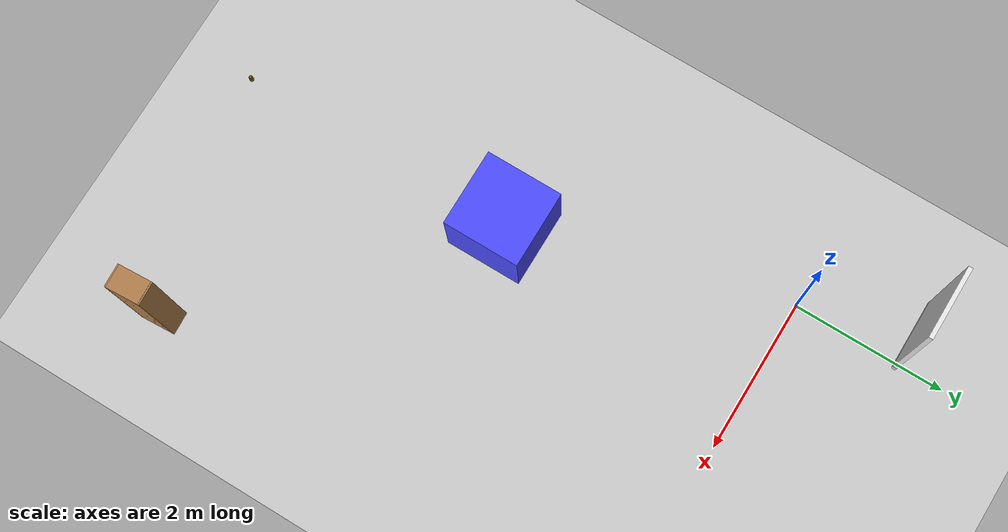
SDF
<sdf version="1.6">
 <world name="default">
  <model name="ground_plane">
   <static>1</static>
   <link name="link">
    <collision name="collision">
     <geometry><plane><normal>0 0 1</normal><size>100 100</size></plane></geometry>
     <surface><friction><ode><mu>100</mu><mu2>50</mu2></ode></friction></surface>
    </collision>
    <visual name="visual">
     <cast_shadows>0</cast_shadows>
     <geometry><plane><normal>0 0 1</normal><size>100 100</size></plane></geometry>
     <material>
      <script><uri>file://media/materials/scripts/gazebo.material</uri><name>Gazebo/Grey</name></script>
     </material>
    </visual>
   </link>
  </model>
  <model name="static_box_3">
   <link name="link">
    <inertial>
     <mass>100</mass>
     <inertia>
      <ixx>0.166667</ixx>
      <ixy>0</ixy>
      <ixz>0</ixz>
      <iyy>0.166667</iyy>
      <iyz>0</iyz>
      <izz>0.166667</izz>
     </inertia>
    </inertial>
    <visual name="visual">
     <geometry><box><size>1 1 1</size></box></geometry>
     <material>
      <script><name>Gazebo/Grey</name><uri>file://media/materials/scripts/gazebo.material</uri></script>
      <ambient>0.3 0.3 1 1</ambient>
      <diffuse>0.7 0.7 0.7 1</diffuse>
      <specular>0.01 0.01 0.01 1</specular>
      <emissive>0 0 0 1</emissive>
      <shader type="vertex"><normal_map>__default__</normal_map></shader>
     </material>
    </visual>
    <collision name="collision">
     <geometry><box><size>1 1 1</size></box></geometry>
     <surface>
      <friction>
       <ode><mu>1</mu><mu2>1</mu2><fdir1>0 0 0</fdir1><slip1>0</slip1><slip2>0</slip2></ode>
       <torsional>
        <coefficient>1</coefficient>
        <patch_radius>0</patch_radius>
        <surface_radius>0</surface_radius>
        <use_patch_radius>1</use_patch_radius>
        <ode><slip>0</slip></ode>
       </torsional>
      </friction>
      <bounce><restitution_coefficient>0</restitution_coefficient><threshold>1e+06</threshold></bounce>
      <contact>
       <collide_without_contact>0</collide_without_contact>
       <collide_without_contact_bitmask>1</collide_without_contact_bitmask>
       <collide_bitmask>1</collide_bitmask>
       <ode>
        <soft_cfm>0</soft_cfm>
        <soft_erp>0.2</soft_erp>
        <kp>1e+13</kp>
        <kd>1</kd>
        <max_vel>0.01</max_vel>
        <min_depth>0</min_depth>
       </ode>
       <bullet>
        <split_impulse>1</split_impulse>
        <split_impulse_penetration_threshold>-0.01</split_impulse_penetration_threshold>
        <soft_cfm>0</soft_cfm>
        <soft_erp>0.2</soft_erp>
        <kp>1e+13</kp>
        <kd>1</kd>
       </bullet>
      </contact>
     </surface>
    </collision>
   </link>
   <static>0</static>
   <pose>1.00498 -3.51701 0.499998 1e-06 -1.4e-05 0.0012</pose>
  </model>
  <model name="full_wall_55_920_2090_0">
   <link name="link">
    <inertial>
     <mass>50</mass>
     <inertia><ixx>1</ixx><ixy>0</ixy><ixz>0</ixz><iyy>1</iyy><iyz>0</iyz><izz>1</izz></inertia>
    </inertial>
    <visual name="bottom_frame">
     <pose>0 0 0.05 0 -0 0</pose>
     <geometry><box><size>0.055 0.92 0.1</size></box></geometry>
     <material>
      <script><uri>model://base_materials/color/scripts</uri><name>hsr_color/white</name></script>
     </material>
    </visual>
    <collision name="collision_bottom_frame">
     <pose>0 0 0.05 0 -0 0</pose>
     <geometry><box><size>0.055 0.92 0.1</size></box></geometry>
    </collision>
    <visual name="wall">
     <pose>0 0 1.095 0 -0 0</pose>
     <geometry><box><size>0.055 0.92 1.99</size></box></geometry>
     <material>
      <script>
       <uri>model://base_materials/wall/scripts</uri>
       <uri>model://base_materials/wall/textures</uri>
       <name>wall/white_noise</name>
      </script>
     </material>
    </visual>
    <collision name="collision_wall">
     <pose>0 0 1.095 0 -0 0</pose>
     <geometry><box><size>0.055 0.92 1.99</size></box></geometry>
    </collision>
    <velocity_decay><linear>0</linear><angular>0</angular></velocity_decay>
   </link>
   <static>1</static>
   <pose>-0.391738 1.37269 0 0 -0 1.5726</pose>
  </model>
  <model name="bottle">
   <link name="link">
    <inertial>
     <mass>0.05</mass>
     <inertia><ixx>0.00058</ixx><ixy>0</ixy><ixz>0</ixz><iyy>0.00058</iyy><iyz>0</iyz><izz>0.00016</izz></inertia>
    </inertial>
    <visual name="top">
     <pose>0 0 0.0555 0 -0 0</pose>
     <geometry><cylinder><radius>0.019</radius><length>0.016</length></cylinder></geometry>
     <material>
      <ambient>1 0.647 0 1</ambient>
      <diffuse>0.5 0.3235 0 1</diffuse>
      <specular>0.1 0.1 0.1 1</specular>
      <emissive>0 0 0 0</emissive>
     </material>
    </visual>
    <collision name="collision_top">
     <pose>0 0 0.0555 0 -0 0</pose>
     <geometry><cylinder><radius>0.019</radius><length>0.016</length></cylinder></geometry>
     <surface>
      <bounce><restitution_coefficient>0.2</restitution_coefficient><threshold>0</threshold></bounce>
      <contact><ode><kp>10000</kp><max_vel>10</max_vel></ode></contact>
     </surface>
    </collision>
    <visual name="bottom">
     <geometry><cylinder><radius>0.0245</radius><length>0.095</length></cylinder></geometry>
     <material>
      <ambient>1 0.7 0.3 1</ambient>
      <diffuse>0.5 0.3235 0 1</diffuse>
      <specular>0.1 0.1 0.1 1</specular>
      <emissive>0 0 0 0</emissive>
     </material>
    </visual>
    <collision name="collision_bottom">
     <geometry><cylinder><radius>0.0245</radius><length>0.095</length></cylinder></geometry>
     <surface>
      <bounce><restitution_coefficient>0.2</restitution_coefficient><threshold>0</threshold></bounce>
      <contact><ode><kp>100000</kp><max_vel>10</max_vel></ode></contact>
     </surface>
    </collision>
    <velocity_decay><linear>0</linear><angular>0</angular></velocity_decay>
    <visual name="marker_4000">
     <pose>0.0245 0 0 0 1.57 3.141</pose>
     <geometry><box><size>0.045 0.045 0.0001</size></box></geometry>
     <material>
      <script>
       <uri>model://marker/4000/scripts</uri>
       <uri>model://marker/4000/textures</uri>
       <name>Marker/4000</name>
      </script>
     </material>
    </visual>
   </link>
   <static>0</static>
   <pose>1.13095 -6.99592 0.6825 9e-06 -4e-06 1.48442</pose>
  </model>
  <model name="high_shelf">
   <link name="link">
    <inertial>
     <mass>5</mass>
     <inertia><ixx>1</ixx><ixy>0</ixy><ixz>0</ixz><iyy>1</iyy><iyz>0</iyz><izz>1</izz></inertia>
    </inertial>
    <visual name="left_board">
     <pose>-0.1475 0.009 0.898 0 -0 0</pose>
     <geometry><box><size>0.295 0.018 1.796</size></box></geometry>
     <material>
      <script>
       <uri>model://base_materials/wood/scripts</uri>
       <uri>model://base_materials/wood/textures</uri>
       <name>base_materials/light_wood</name>
      </script>
     </material>
    </visual>
    <collision name="collision_left_board">
     <pose>-0.1475 0.009 0.898 0 -0 0</pose>
     <geometry><box><size>0.295 0.018 1.796</size></box></geometry>
    </collision>
    <visual name="right_board">
     <pose>-0.1475 0.441 0.898 0 -0 0</pose>
     <geometry><box><size>0.295 0.018 1.796</size></box></geometry>
     <material>
      <script>
       <uri>model://base_materials/wood/scripts</uri>
       <uri>model://base_materials/wood/textures</uri>
       <name>base_materials/light_wood</name>
      </script>
     </material>
    </visual>
    <collision name="collision_right_board">
     <pose>-0.1475 0.441 0.898 0 -0 0</pose>
     <geometry><box><size>0.295 0.018 1.796</size></box></geometry>
    </collision>
    <visual name="top_board">
     <pose>-0.1475 0.225 1.7825 0 -0 0</pose>
     <geometry><box><size>0.295 0.414 0.035</size></box></geometry>
     <material>
      <script>
       <uri>model://base_materials/wood/scripts</uri>
       <uri>model://base_materials/wood/textures</uri>
       <name>base_materials/light_wood</name>
      </script>
     </material>
    </visual>
    <collision name="collision_top_board">
     <pose>-0.1475 0.225 1.7825 0 -0 0</pose>
     <geometry><box><size>0.295 0.414 0.035</size></box></geometry>
    </collision>
    <visual name="1st_shelf">
     <pose>-0.162 0.225 1.51 0 -0 0</pose>
     <geometry><box><size>0.266 0.414 0.018</size></box></geometry>
     <material>
      <script>
       <uri>model://base_materials/wood/scripts</uri>
       <uri>model://base_materials/wood/textures</uri>
       <name>base_materials/light_wood</name>
      </script>
     </material>
    </visual>
    <collision name="collision_1st_shelf">
     <pose>-0.162 0.225 1.51 0 -0 0</pose>
     <geometry><box><size>0.266 0.414 0.018</size></box></geometry>
    </collision>
    <visual name="2nd_shelf">
     <pose>-0.162 0.225 1.22 0 -0 0</pose>
     <geometry><box><size>0.266 0.414 0.018</size></box></geometry>
     <material>
      <script>
       <uri>model://base_materials/wood/scripts</uri>
       <uri>model://base_materials/wood/textures</uri>
       <name>base_materials/light_wood</name>
      </script>
     </material>
    </visual>
    <collision name="collision_2nd_shelf">
     <pose>-0.162 0.225 1.22 0 -0 0</pose>
     <geometry><box><size>0.266 0.414 0.018</size></box></geometry>
    </collision>
    <visual name="3rd_shelf">
     <pose>-0.162 0.225 0.93 0 -0 0</pose>
     <geometry><box><size>0.266 0.414 0.018</size></box></geometry>
     <material>
      <script>
       <uri>model://base_materials/wood/scripts</uri>
       <uri>model://base_materials/wood/textures</uri>
       <name>base_materials/light_wood</name>
      </script>
     </material>
    </visual>
    <collision name="collision_3rd_shelf">
     <pose>-0.162 0.225 0.93 0 -0 0</pose>
     <geometry><box><size>0.266 0.414 0.018</size></box></geometry>
    </collision>
    <visual name="4th_shelf">
     <pose>-0.162 0.225 0.65 0 -0 0</pose>
     <geometry><box><size>0.266 0.414 0.018</size></box></geometry>
     <material>
      <script>
       <uri>model://base_materials/wood/scripts</uri>
       <uri>model://base_materials/wood/textures</uri>
       <name>base_materials/light_wood</name>
      </script>
     </material>
    </visual>
    <collision name="collision_4th_shelf">
     <pose>-0.162 0.225 0.65 0 -0 0</pose>
     <geometry><box><size>0.266 0.414 0.018</size></box></geometry>
    </collision>
    <visual name="5th_shelf">
     <pose>-0.162 0.225 0.36 0 -0 0</pose>
     <geometry><box><size>0.266 0.414 0.018</size></box></geometry>
     <material>
      <script>
       <uri>model://base_materials/wood/scripts</uri>
       <uri>model://base_materials/wood/textures</uri>
       <name>base_materials/light_wood</name>
      </script>
     </material>
    </visual>
    <collision name="collision_5th_shelf">
     <pose>-0.162 0.225 0.36 0 -0 0</pose>
     <geometry><box><size>0.266 0.414 0.018</size></box></geometry>
    </collision>
    <visual name="bottom_board">
     <pose>-0.1475 0.225 0.035 0 -0 0</pose>
     <geometry><box><size>0.295 0.414 0.07</size></box></geometry>
     <material>
      <script>
       <uri>model://base_materials/wood/scripts</uri>
       <uri>model://base_materials/wood/textures</uri>
       <name>base_materials/light_wood</name>
      </script>
     </material>
    </visual>
    <collision name="collision_bottom_board">
     <pose>-0.1475 0.225 0.035 0 -0 0</pose>
     <geometry><box><size>0.295 0.414 0.07</size></box></geometry>
    </collision>
    <visual name="back_board">
     <pose>-0.286 0.225 0.898 0 -0 0</pose>
     <geometry><box><size>0.018 0.414 1.796</size></box></geometry>
     <material>
      <script>
       <uri>model://base_materials/wood/scripts</uri>
       <uri>model://base_materials/wood/textures</uri>
       <name>base_materials/light_wood</name>
      </script>
     </material>
    </visual>
    <collision name="collision_back_board">
     <pose>-0.286 0.225 0.898 0 -0 0</pose>
     <geometry><box><size>0.018 0.414 1.796</size></box></geometry>
    </collision>
    <velocity_decay><linear>0</linear><angular>0</angular></velocity_decay>
   </link>
   <static>1</static>
   <pose>3.88802 -6.25445 0 0 0 -3.08817</pose>
  </model>
 </world>
</sdf>
